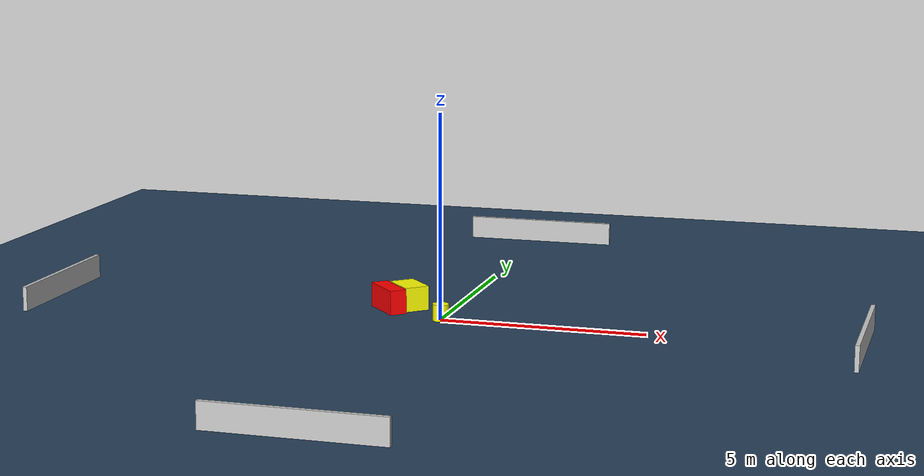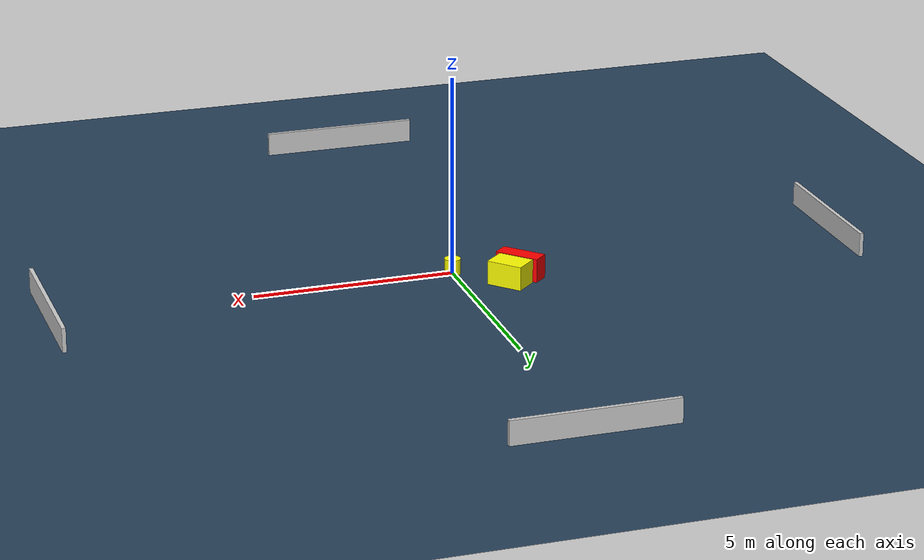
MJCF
<?xml version="1.0" ?>
<mujoco model="generated_environment">
  <option timestep="0.01" integrator="RK4" cone="elliptic"/>
  <default>
    <geom density="1"/>
  </default>
  <asset>
    <texture builtin="gradient" height="3072" name="skybox" rgb1="0.3 0.5 0.7" rgb2="0 0 0" type="skybox" width="512"/>
    <texture builtin="checker" height="300" name="groundplane" rgb1="0.2 0.3 0.4" rgb2="0.1 0.2 0.3" type="2d" width="300"/>
    <material name="groundplane" reflectance="0.2" texrepeat="5 5" texture="groundplane"/>
  </asset>
  <worldbody>
    <light dir="0 0 -1" directional="true" pos="0 0 1.5"/>
    <geom condim="3" friction="0.5 0.005 0.001" material="groundplane" name="floor" pos="0 0 0" size="0 0 0.05" type="plane"/>
    <body name="walls">
      <geom name="wall_1" condim="4" pos="-10.0 0.0 0.3" rgba="0.800000011920929 0.800000011920929 0.800000011920929 1.0" size="0.05 2.0 0.3" type="box"/>
      <geom name="wall_2" condim="4" pos="10.0 0.0 0.3" rgba="0.800000011920929 0.800000011920929 0.800000011920929 1.0" size="0.05 2.0 0.3" type="box"/>
      <geom name="wall_3" condim="4" pos="0.0 -10.0 0.3" rgba="0.800000011920929 0.800000011920929 0.800000011920929 1.0" size="2.0 0.05 0.3" type="box"/>
      <geom name="wall_4" condim="4" pos="0.0 10.0 0.3" rgba="0.800000011920929 0.800000011920929 0.800000011920929 1.0" size="2.0 0.05 0.3" type="box"/>
    </body>
    <body name="robot">
      <joint name="joint_x" type="slide" pos="0 0 0" axis="1 0 0"/>
      <joint name="joint_y" type="slide" pos="0 0 0" axis="0 1 0"/>
      <geom name="robot" type="cylinder" pos="0.0 0.0 0.2" size="0.2 0.2 0.0" mass="5.0" friction="1.0 0.005 0.0001" condim="4" rgba="1.0 1.0 0.0 1.0"/>
    </body>
    <body name="obstacle_1_movable">
      <geom name="obstacle_1_movable" condim="4" pos="-1.123776483925911 1.0572848104884205 0.3" euler="0 0 132.39483715079143" friction="0.0 0.005 0.001" rgba="1.0 1.0 0.0 1.0" size="0.4553516696866537 0.3138526521229626 0.3" type="box" mass="0.1"/>
      <joint type="free"/>
    </body>
    <body name="obstacle_2_static">
      <geom name="obstacle_2_static" condim="4" pos="-1.5250443271781584 0.6615995013503323 0.3" euler="0 0 222.54372382994535" friction="0.0 0.005 0.001" rgba="1.0 0.0 0.0 1.0" size="0.20950508902596932 0.5649053580282674 0.3" type="box"/>
    </body>
  </worldbody>
  <actuator>
    <motor name="actuator_x" joint="joint_x" gear="1" ctrlrange="-1 1"/>
    <motor name="actuator_y" joint="joint_y" gear="1" ctrlrange="-1 1"/>
  </actuator>
</mujoco>
